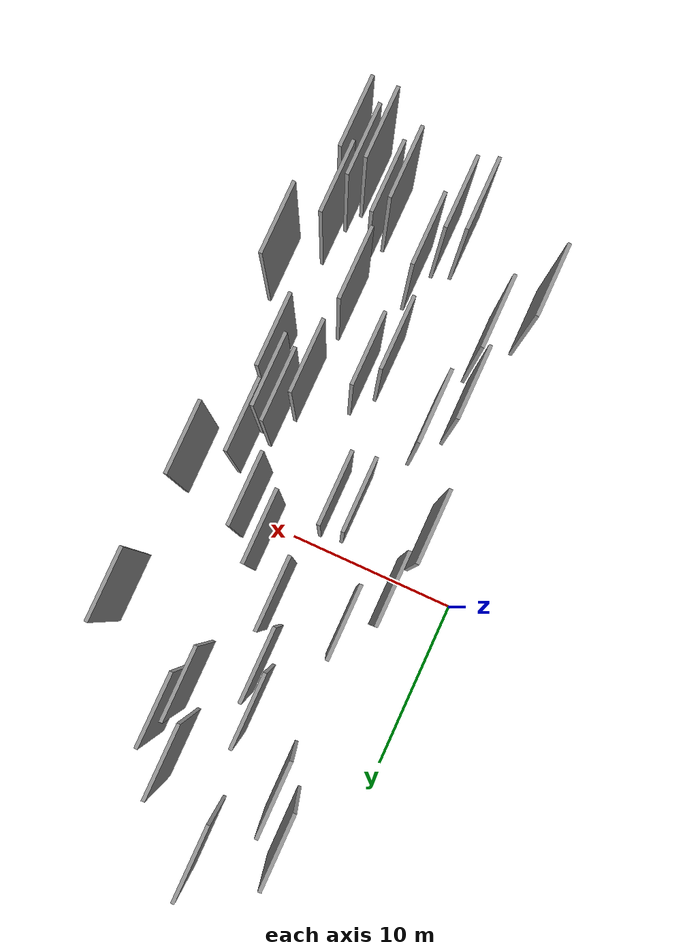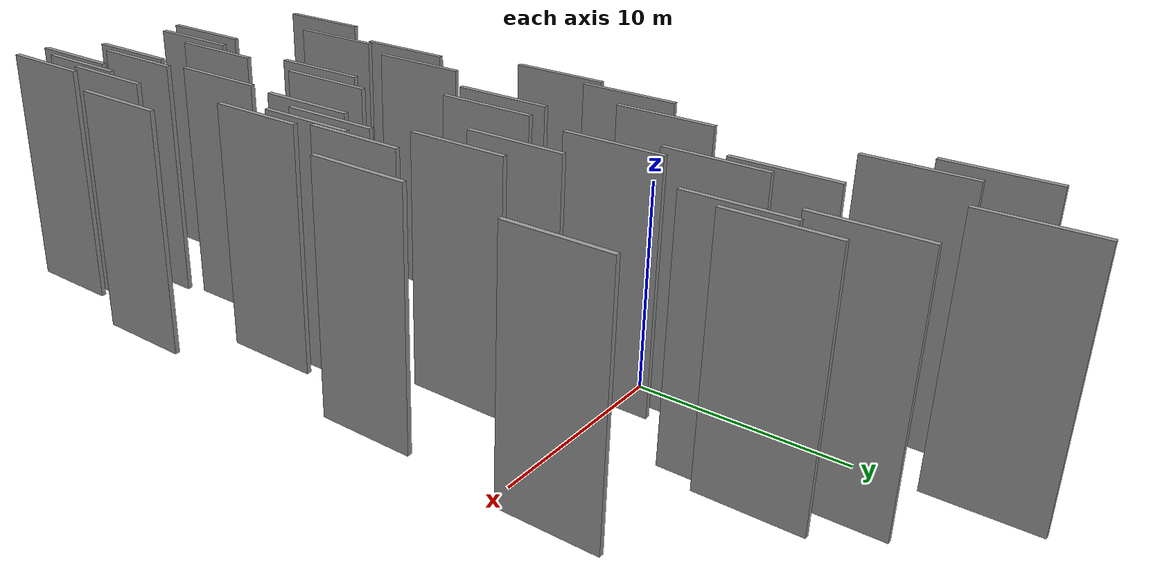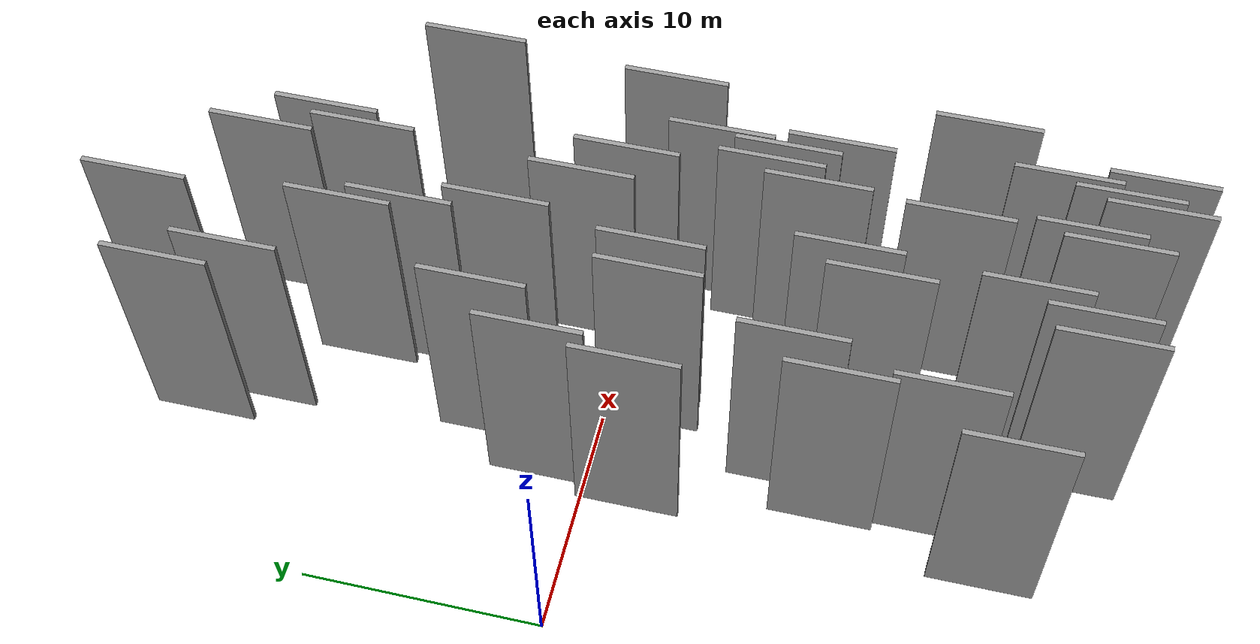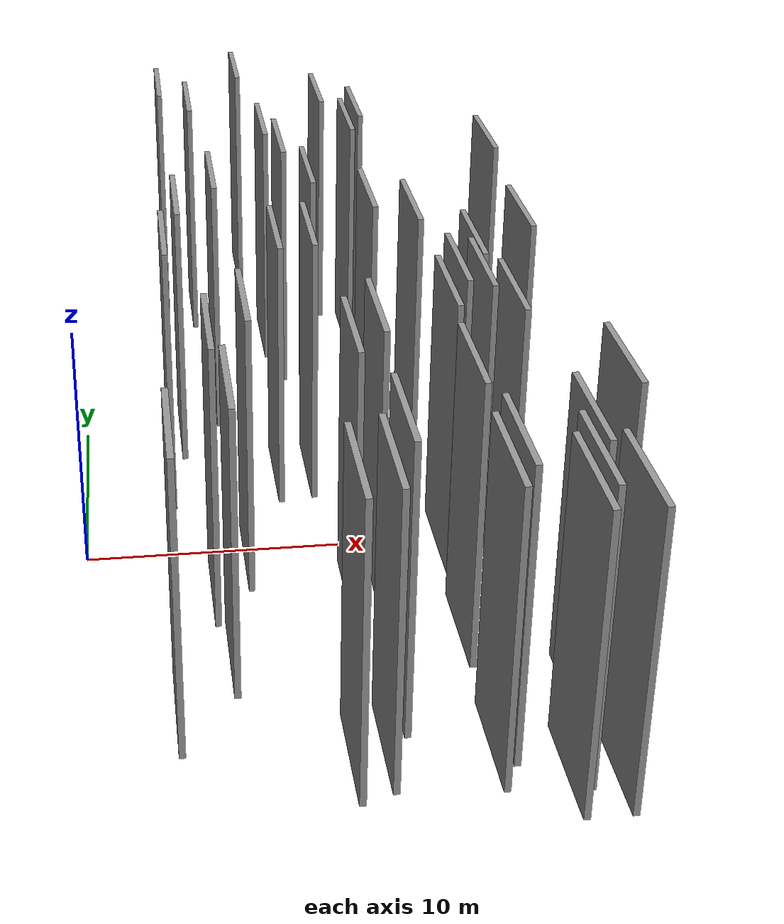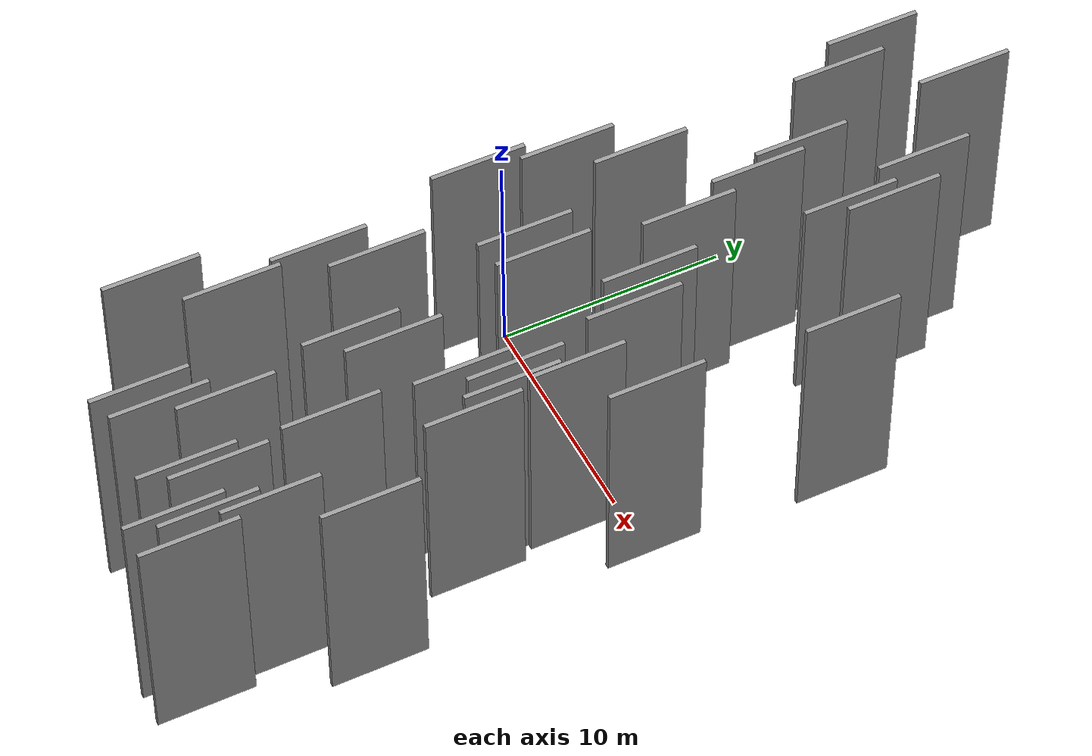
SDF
<sdf version="1.6">
 <world name="default">
  <scene>
   <sky><clouds><speed>12</speed></clouds></sky>
   <ambient>0.4 0.4 0.4 1</ambient>
   <background>0.7 0.7 0.7 1</background>
   <shadows>1</shadows>
  </scene>
  <gravity>0 0 -9.8066</gravity>
  <magnetic_field>6e-06 2.3e-05 -4.2e-05</magnetic_field>
  <physics default="0" name="default_physics" type="ode">
   <ode>
    <solver>
     <type>quick</type>
     <iters>10</iters>
     <sor>1.0</sor>
     <use_dynamic_moi_rescaling>0</use_dynamic_moi_rescaling>
    </solver>
    <constraints>
     <cfm>0</cfm>
     <erp>0.2</erp>
     <contact_max_correcting_vel>100</contact_max_correcting_vel>
     <contact_surface_layer>0.001</contact_surface_layer>
    </constraints>
   </ode>
   <max_step_size>0.004</max_step_size>
   <real_time_factor>1</real_time_factor>
   <real_time_update_rate>250</real_time_update_rate>
  </physics>
  <light name="sun" type="directional">
   <pose>0 0 10 0 0 0</pose>
   <diffuse>0.8 0.8 0.8 1</diffuse>
   <specular>0.2 0.2 0.2 1</specular>
   <attenuation>
    <range>1000</range>
    <constant>0.9</constant>
    <linear>0.01</linear>
    <quadratic>0.001</quadratic>
   </attenuation>
   <direction>-0.5 0.1 -0.9</direction>
  </light>
  <model name="grey_wall_1">
   <static>1</static>
   <pose>14.1114 -3.7937 5.0 0.000000 0.000000 1.570796</pose>
   <link name="link">
    <pose>0 0 5.00 0 0 0</pose>
    <collision name="collision"><geometry><box><size>4.00 0.2 10.00</size></box></geometry></collision>
    <visual name="visual">
     <cast_shadows>0</cast_shadows>
     <geometry><box><size>4.00 0.2 10.00</size></box></geometry>
     <material>
      <script>
       <uri>model://grey_wall/materials/scripts</uri>
       <uri>model://grey_wall/materials/textures</uri>
       <name>vrc/grey_wall</name>
      </script>
     </material>
    </visual>
   </link>
  </model>
  <model name="grey_wall_2">
   <static>1</static>
   <pose>4.8286 -13.6177 5.0 0.000000 0.000000 1.570796</pose>
   <link name="link">
    <pose>0 0 5.00 0 0 0</pose>
    <collision name="collision"><geometry><box><size>4.00 0.2 10.00</size></box></geometry></collision>
    <visual name="visual">
     <cast_shadows>0</cast_shadows>
     <geometry><box><size>4.00 0.2 10.00</size></box></geometry>
     <material>
      <script>
       <uri>model://grey_wall/materials/scripts</uri>
       <uri>model://grey_wall/materials/textures</uri>
       <name>vrc/grey_wall</name>
      </script>
     </material>
    </visual>
   </link>
  </model>
  <model name="grey_wall_3">
   <static>1</static>
   <pose>14.4330 -18.7778 5.0 0.000000 0.000000 1.570796</pose>
   <link name="link">
    <pose>0 0 5.00 0 0 0</pose>
    <collision name="collision"><geometry><box><size>4.00 0.2 10.00</size></box></geometry></collision>
    <visual name="visual">
     <cast_shadows>0</cast_shadows>
     <geometry><box><size>4.00 0.2 10.00</size></box></geometry>
     <material>
      <script>
       <uri>model://grey_wall/materials/scripts</uri>
       <uri>model://grey_wall/materials/textures</uri>
       <name>vrc/grey_wall</name>
      </script>
     </material>
    </visual>
   </link>
  </model>
  <model name="grey_wall_4">
   <static>1</static>
   <pose>10.6159 12.9399 5.0 0.000000 0.000000 1.570796</pose>
   <link name="link">
    <pose>0 0 5.00 0 0 0</pose>
    <collision name="collision"><geometry><box><size>4.00 0.2 10.00</size></box></geometry></collision>
    <visual name="visual">
     <cast_shadows>0</cast_shadows>
     <geometry><box><size>4.00 0.2 10.00</size></box></geometry>
     <material>
      <script>
       <uri>model://grey_wall/materials/scripts</uri>
       <uri>model://grey_wall/materials/textures</uri>
       <name>vrc/grey_wall</name>
      </script>
     </material>
    </visual>
   </link>
  </model>
  <model name="grey_wall_5">
   <static>1</static>
   <pose>16.2776 -1.5893 5.0 0.000000 0.000000 1.570796</pose>
   <link name="link">
    <pose>0 0 5.00 0 0 0</pose>
    <collision name="collision"><geometry><box><size>4.00 0.2 10.00</size></box></geometry></collision>
    <visual name="visual">
     <cast_shadows>0</cast_shadows>
     <geometry><box><size>4.00 0.2 10.00</size></box></geometry>
     <material>
      <script>
       <uri>model://grey_wall/materials/scripts</uri>
       <uri>model://grey_wall/materials/textures</uri>
       <name>vrc/grey_wall</name>
      </script>
     </material>
    </visual>
   </link>
  </model>
  <model name="grey_wall_6">
   <static>1</static>
   <pose>3.9730 0.8960 5.0 0.000000 0.000000 1.570796</pose>
   <link name="link">
    <pose>0 0 5.00 0 0 0</pose>
    <collision name="collision"><geometry><box><size>4.00 0.2 10.00</size></box></geometry></collision>
    <visual name="visual">
     <cast_shadows>0</cast_shadows>
     <geometry><box><size>4.00 0.2 10.00</size></box></geometry>
     <material>
      <script>
       <uri>model://grey_wall/materials/scripts</uri>
       <uri>model://grey_wall/materials/textures</uri>
       <name>vrc/grey_wall</name>
      </script>
     </material>
    </visual>
   </link>
  </model>
  <model name="grey_wall_7">
   <static>1</static>
   <pose>5.7420 -8.0515 5.0 0.000000 0.000000 1.570796</pose>
   <link name="link">
    <pose>0 0 5.00 0 0 0</pose>
    <collision name="collision"><geometry><box><size>4.00 0.2 10.00</size></box></geometry></collision>
    <visual name="visual">
     <cast_shadows>0</cast_shadows>
     <geometry><box><size>4.00 0.2 10.00</size></box></geometry>
     <material>
      <script>
       <uri>model://grey_wall/materials/scripts</uri>
       <uri>model://grey_wall/materials/textures</uri>
       <name>vrc/grey_wall</name>
      </script>
     </material>
    </visual>
   </link>
  </model>
  <model name="grey_wall_8">
   <static>1</static>
   <pose>16.6600 -13.3874 5.0 0.000000 0.000000 1.570796</pose>
   <link name="link">
    <pose>0 0 5.00 0 0 0</pose>
    <collision name="collision"><geometry><box><size>4.00 0.2 10.00</size></box></geometry></collision>
    <visual name="visual">
     <cast_shadows>0</cast_shadows>
     <geometry><box><size>4.00 0.2 10.00</size></box></geometry>
     <material>
      <script>
       <uri>model://grey_wall/materials/scripts</uri>
       <uri>model://grey_wall/materials/textures</uri>
       <name>vrc/grey_wall</name>
      </script>
     </material>
    </visual>
   </link>
  </model>
  <model name="grey_wall_9">
   <static>1</static>
   <pose>13.8829 -6.3449 5.0 0.000000 0.000000 1.570796</pose>
   <link name="link">
    <pose>0 0 5.00 0 0 0</pose>
    <collision name="collision"><geometry><box><size>4.00 0.2 10.00</size></box></geometry></collision>
    <visual name="visual">
     <cast_shadows>0</cast_shadows>
     <geometry><box><size>4.00 0.2 10.00</size></box></geometry>
     <material>
      <script>
       <uri>model://grey_wall/materials/scripts</uri>
       <uri>model://grey_wall/materials/textures</uri>
       <name>vrc/grey_wall</name>
      </script>
     </material>
    </visual>
   </link>
  </model>
  <model name="grey_wall_10">
   <static>1</static>
   <pose>9.6374 -15.9905 5.0 0.000000 0.000000 1.570796</pose>
   <link name="link">
    <pose>0 0 5.00 0 0 0</pose>
    <collision name="collision"><geometry><box><size>4.00 0.2 10.00</size></box></geometry></collision>
    <visual name="visual">
     <cast_shadows>0</cast_shadows>
     <geometry><box><size>4.00 0.2 10.00</size></box></geometry>
     <material>
      <script>
       <uri>model://grey_wall/materials/scripts</uri>
       <uri>model://grey_wall/materials/textures</uri>
       <name>vrc/grey_wall</name>
      </script>
     </material>
    </visual>
   </link>
  </model>
  <model name="grey_wall_11">
   <static>1</static>
   <pose>3.8425 14.4688 5.0 0.000000 0.000000 1.570796</pose>
   <link name="link">
    <pose>0 0 5.00 0 0 0</pose>
    <collision name="collision"><geometry><box><size>4.00 0.2 10.00</size></box></geometry></collision>
    <visual name="visual">
     <cast_shadows>0</cast_shadows>
     <geometry><box><size>4.00 0.2 10.00</size></box></geometry>
     <material>
      <script>
       <uri>model://grey_wall/materials/scripts</uri>
       <uri>model://grey_wall/materials/textures</uri>
       <name>vrc/grey_wall</name>
      </script>
     </material>
    </visual>
   </link>
  </model>
  <model name="grey_wall_12">
   <static>1</static>
   <pose>8.5138 -2.3980 5.0 0.000000 0.000000 1.570796</pose>
   <link name="link">
    <pose>0 0 5.00 0 0 0</pose>
    <collision name="collision"><geometry><box><size>4.00 0.2 10.00</size></box></geometry></collision>
    <visual name="visual">
     <cast_shadows>0</cast_shadows>
     <geometry><box><size>4.00 0.2 10.00</size></box></geometry>
     <material>
      <script>
       <uri>model://grey_wall/materials/scripts</uri>
       <uri>model://grey_wall/materials/textures</uri>
       <name>vrc/grey_wall</name>
      </script>
     </material>
    </visual>
   </link>
  </model>
  <model name="grey_wall_13">
   <static>1</static>
   <pose>7.9102 -18.7060 5.0 0.000000 0.000000 1.570796</pose>
   <link name="link">
    <pose>0 0 5.00 0 0 0</pose>
    <collision name="collision"><geometry><box><size>4.00 0.2 10.00</size></box></geometry></collision>
    <visual name="visual">
     <cast_shadows>0</cast_shadows>
     <geometry><box><size>4.00 0.2 10.00</size></box></geometry>
     <material>
      <script>
       <uri>model://grey_wall/materials/scripts</uri>
       <uri>model://grey_wall/materials/textures</uri>
       <name>vrc/grey_wall</name>
      </script>
     </material>
    </visual>
   </link>
  </model>
  <model name="grey_wall_14">
   <static>1</static>
   <pose>13.1579 -5.8604 5.0 0.000000 0.000000 1.570796</pose>
   <link name="link">
    <pose>0 0 5.00 0 0 0</pose>
    <collision name="collision"><geometry><box><size>4.00 0.2 10.00</size></box></geometry></collision>
    <visual name="visual">
     <cast_shadows>0</cast_shadows>
     <geometry><box><size>4.00 0.2 10.00</size></box></geometry>
     <material>
      <script>
       <uri>model://grey_wall/materials/scripts</uri>
       <uri>model://grey_wall/materials/textures</uri>
       <name>vrc/grey_wall</name>
      </script>
     </material>
    </visual>
   </link>
  </model>
  <model name="grey_wall_15">
   <static>1</static>
   <pose>11.9748 10.8636 5.0 0.000000 0.000000 1.570796</pose>
   <link name="link">
    <pose>0 0 5.00 0 0 0</pose>
    <collision name="collision"><geometry><box><size>4.00 0.2 10.00</size></box></geometry></collision>
    <visual name="visual">
     <cast_shadows>0</cast_shadows>
     <geometry><box><size>4.00 0.2 10.00</size></box></geometry>
     <material>
      <script>
       <uri>model://grey_wall/materials/scripts</uri>
       <uri>model://grey_wall/materials/textures</uri>
       <name>vrc/grey_wall</name>
      </script>
     </material>
    </visual>
   </link>
  </model>
  <model name="grey_wall_16">
   <static>1</static>
   <pose>12.4791 -0.5651 5.0 0.000000 0.000000 1.570796</pose>
   <link name="link">
    <pose>0 0 5.00 0 0 0</pose>
    <collision name="collision"><geometry><box><size>4.00 0.2 10.00</size></box></geometry></collision>
    <visual name="visual">
     <cast_shadows>0</cast_shadows>
     <geometry><box><size>4.00 0.2 10.00</size></box></geometry>
     <material>
      <script>
       <uri>model://grey_wall/materials/scripts</uri>
       <uri>model://grey_wall/materials/textures</uri>
       <name>vrc/grey_wall</name>
      </script>
     </material>
    </visual>
   </link>
  </model>
  <model name="grey_wall_17">
   <static>1</static>
   <pose>3.3967 -2.6597 5.0 0.000000 0.000000 1.570796</pose>
   <link name="link">
    <pose>0 0 5.00 0 0 0</pose>
    <collision name="collision"><geometry><box><size>4.00 0.2 10.00</size></box></geometry></collision>
    <visual name="visual">
     <cast_shadows>0</cast_shadows>
     <geometry><box><size>4.00 0.2 10.00</size></box></geometry>
     <material>
      <script>
       <uri>model://grey_wall/materials/scripts</uri>
       <uri>model://grey_wall/materials/textures</uri>
       <name>vrc/grey_wall</name>
      </script>
     </material>
    </visual>
   </link>
  </model>
  <model name="grey_wall_18">
   <static>1</static>
   <pose>5.0087 12.3215 5.0 0.000000 0.000000 1.570796</pose>
   <link name="link">
    <pose>0 0 5.00 0 0 0</pose>
    <collision name="collision"><geometry><box><size>4.00 0.2 10.00</size></box></geometry></collision>
    <visual name="visual">
     <cast_shadows>0</cast_shadows>
     <geometry><box><size>4.00 0.2 10.00</size></box></geometry>
     <material>
      <script>
       <uri>model://grey_wall/materials/scripts</uri>
       <uri>model://grey_wall/materials/textures</uri>
       <name>vrc/grey_wall</name>
      </script>
     </material>
    </visual>
   </link>
  </model>
  <model name="grey_wall_19">
   <static>1</static>
   <pose>3.0246 -16.1511 5.0 0.000000 0.000000 1.570796</pose>
   <link name="link">
    <pose>0 0 5.00 0 0 0</pose>
    <collision name="collision"><geometry><box><size>4.00 0.2 10.00</size></box></geometry></collision>
    <visual name="visual">
     <cast_shadows>0</cast_shadows>
     <geometry><box><size>4.00 0.2 10.00</size></box></geometry>
     <material>
      <script>
       <uri>model://grey_wall/materials/scripts</uri>
       <uri>model://grey_wall/materials/textures</uri>
       <name>vrc/grey_wall</name>
      </script>
     </material>
    </visual>
   </link>
  </model>
  <model name="grey_wall_20">
   <static>1</static>
   <pose>8.9035 -10.5954 5.0 0.000000 0.000000 1.570796</pose>
   <link name="link">
    <pose>0 0 5.00 0 0 0</pose>
    <collision name="collision"><geometry><box><size>4.00 0.2 10.00</size></box></geometry></collision>
    <visual name="visual">
     <cast_shadows>0</cast_shadows>
     <geometry><box><size>4.00 0.2 10.00</size></box></geometry>
     <material>
      <script>
       <uri>model://grey_wall/materials/scripts</uri>
       <uri>model://grey_wall/materials/textures</uri>
       <name>vrc/grey_wall</name>
      </script>
     </material>
    </visual>
   </link>
  </model>
  <model name="grey_wall_21">
   <static>1</static>
   <pose>9.8785 -9.2996 5.0 0.000000 0.000000 1.570796</pose>
   <link name="link">
    <pose>0 0 5.00 0 0 0</pose>
    <collision name="collision"><geometry><box><size>4.00 0.2 10.00</size></box></geometry></collision>
    <visual name="visual">
     <cast_shadows>0</cast_shadows>
     <geometry><box><size>4.00 0.2 10.00</size></box></geometry>
     <material>
      <script>
       <uri>model://grey_wall/materials/scripts</uri>
       <uri>model://grey_wall/materials/textures</uri>
       <name>vrc/grey_wall</name>
      </script>
     </material>
    </visual>
   </link>
  </model>
  <model name="grey_wall_22">
   <static>1</static>
   <pose>11.0679 0.8018 5.0 0.000000 0.000000 1.570796</pose>
   <link name="link">
    <pose>0 0 5.00 0 0 0</pose>
    <collision name="collision"><geometry><box><size>4.00 0.2 10.00</size></box></geometry></collision>
    <visual name="visual">
     <cast_shadows>0</cast_shadows>
     <geometry><box><size>4.00 0.2 10.00</size></box></geometry>
     <material>
      <script>
       <uri>model://grey_wall/materials/scripts</uri>
       <uri>model://grey_wall/materials/textures</uri>
       <name>vrc/grey_wall</name>
      </script>
     </material>
    </visual>
   </link>
  </model>
  <model name="grey_wall_23">
   <static>1</static>
   <pose>16.7042 6.4296 5.0 0.000000 0.000000 1.570796</pose>
   <link name="link">
    <pose>0 0 5.00 0 0 0</pose>
    <collision name="collision"><geometry><box><size>4.00 0.2 10.00</size></box></geometry></collision>
    <visual name="visual">
     <cast_shadows>0</cast_shadows>
     <geometry><box><size>4.00 0.2 10.00</size></box></geometry>
     <material>
      <script>
       <uri>model://grey_wall/materials/scripts</uri>
       <uri>model://grey_wall/materials/textures</uri>
       <name>vrc/grey_wall</name>
      </script>
     </material>
    </visual>
   </link>
  </model>
  <model name="grey_wall_24">
   <static>1</static>
   <pose>14.8474 -16.5143 5.0 0.000000 0.000000 1.570796</pose>
   <link name="link">
    <pose>0 0 5.00 0 0 0</pose>
    <collision name="collision"><geometry><box><size>4.00 0.2 10.00</size></box></geometry></collision>
    <visual name="visual">
     <cast_shadows>0</cast_shadows>
     <geometry><box><size>4.00 0.2 10.00</size></box></geometry>
     <material>
      <script>
       <uri>model://grey_wall/materials/scripts</uri>
       <uri>model://grey_wall/materials/textures</uri>
       <name>vrc/grey_wall</name>
      </script>
     </material>
    </visual>
   </link>
  </model>
  <model name="grey_wall_25">
   <static>1</static>
   <pose>8.9203 -18.3437 5.0 0.000000 0.000000 1.570796</pose>
   <link name="link">
    <pose>0 0 5.00 0 0 0</pose>
    <collision name="collision"><geometry><box><size>4.00 0.2 10.00</size></box></geometry></collision>
    <visual name="visual">
     <cast_shadows>0</cast_shadows>
     <geometry><box><size>4.00 0.2 10.00</size></box></geometry>
     <material>
      <script>
       <uri>model://grey_wall/materials/scripts</uri>
       <uri>model://grey_wall/materials/textures</uri>
       <name>vrc/grey_wall</name>
      </script>
     </material>
    </visual>
   </link>
  </model>
  <model name="grey_wall_26">
   <static>1</static>
   <pose>11.4298 9.2579 5.0 0.000000 0.000000 1.570796</pose>
   <link name="link">
    <pose>0 0 5.00 0 0 0</pose>
    <collision name="collision"><geometry><box><size>4.00 0.2 10.00</size></box></geometry></collision>
    <visual name="visual">
     <cast_shadows>0</cast_shadows>
     <geometry><box><size>4.00 0.2 10.00</size></box></geometry>
     <material>
      <script>
       <uri>model://grey_wall/materials/scripts</uri>
       <uri>model://grey_wall/materials/textures</uri>
       <name>vrc/grey_wall</name>
      </script>
     </material>
    </visual>
   </link>
  </model>
  <model name="grey_wall_27">
   <static>1</static>
   <pose>12.5568 -17.5587 5.0 0.000000 0.000000 1.570796</pose>
   <link name="link">
    <pose>0 0 5.00 0 0 0</pose>
    <collision name="collision"><geometry><box><size>4.00 0.2 10.00</size></box></geometry></collision>
    <visual name="visual">
     <cast_shadows>0</cast_shadows>
     <geometry><box><size>4.00 0.2 10.00</size></box></geometry>
     <material>
      <script>
       <uri>model://grey_wall/materials/scripts</uri>
       <uri>model://grey_wall/materials/textures</uri>
       <name>vrc/grey_wall</name>
      </script>
     </material>
    </visual>
   </link>
  </model>
  <model name="grey_wall_28">
   <static>1</static>
   <pose>12.4710 -7.7170 5.0 0.000000 0.000000 1.570796</pose>
   <link name="link">
    <pose>0 0 5.00 0 0 0</pose>
    <collision name="collision"><geometry><box><size>4.00 0.2 10.00</size></box></geometry></collision>
    <visual name="visual">
     <cast_shadows>0</cast_shadows>
     <geometry><box><size>4.00 0.2 10.00</size></box></geometry>
     <material>
      <script>
       <uri>model://grey_wall/materials/scripts</uri>
       <uri>model://grey_wall/materials/textures</uri>
       <name>vrc/grey_wall</name>
      </script>
     </material>
    </visual>
   </link>
  </model>
  <model name="grey_wall_29">
   <static>1</static>
   <pose>7.8761 9.0600 5.0 0.000000 0.000000 1.570796</pose>
   <link name="link">
    <pose>0 0 5.00 0 0 0</pose>
    <collision name="collision"><geometry><box><size>4.00 0.2 10.00</size></box></geometry></collision>
    <visual name="visual">
     <cast_shadows>0</cast_shadows>
     <geometry><box><size>4.00 0.2 10.00</size></box></geometry>
     <material>
      <script>
       <uri>model://grey_wall/materials/scripts</uri>
       <uri>model://grey_wall/materials/textures</uri>
       <name>vrc/grey_wall</name>
      </script>
     </material>
    </visual>
   </link>
  </model>
  <model name="grey_wall_30">
   <static>1</static>
   <pose>4.4993 -9.9000 5.0 0.000000 0.000000 1.570796</pose>
   <link name="link">
    <pose>0 0 5.00 0 0 0</pose>
    <collision name="collision"><geometry><box><size>4.00 0.2 10.00</size></box></geometry></collision>
    <visual name="visual">
     <cast_shadows>0</cast_shadows>
     <geometry><box><size>4.00 0.2 10.00</size></box></geometry>
     <material>
      <script>
       <uri>model://grey_wall/materials/scripts</uri>
       <uri>model://grey_wall/materials/textures</uri>
       <name>vrc/grey_wall</name>
      </script>
     </material>
    </visual>
   </link>
  </model>
  <model name="grey_wall_31">
   <static>1</static>
   <pose>9.1450 3.4872 5.0 0.000000 0.000000 1.570796</pose>
   <link name="link">
    <pose>0 0 5.00 0 0 0</pose>
    <collision name="collision"><geometry><box><size>4.00 0.2 10.00</size></box></geometry></collision>
    <visual name="visual">
     <cast_shadows>0</cast_shadows>
     <geometry><box><size>4.00 0.2 10.00</size></box></geometry>
     <material>
      <script>
       <uri>model://grey_wall/materials/scripts</uri>
       <uri>model://grey_wall/materials/textures</uri>
       <name>vrc/grey_wall</name>
      </script>
     </material>
    </visual>
   </link>
  </model>
  <model name="grey_wall_32">
   <static>1</static>
   <pose>7.2981 -2.5812 5.0 0.000000 0.000000 1.570796</pose>
   <link name="link">
    <pose>0 0 5.00 0 0 0</pose>
    <collision name="collision"><geometry><box><size>4.00 0.2 10.00</size></box></geometry></collision>
    <visual name="visual">
     <cast_shadows>0</cast_shadows>
     <geometry><box><size>4.00 0.2 10.00</size></box></geometry>
     <material>
      <script>
       <uri>model://grey_wall/materials/scripts</uri>
       <uri>model://grey_wall/materials/textures</uri>
       <name>vrc/grey_wall</name>
      </script>
     </material>
    </visual>
   </link>
  </model>
  <model name="grey_wall_33">
   <static>1</static>
   <pose>7.3447 16.6387 5.0 0.000000 0.000000 1.570796</pose>
   <link name="link">
    <pose>0 0 5.00 0 0 0</pose>
    <collision name="collision"><geometry><box><size>4.00 0.2 10.00</size></box></geometry></collision>
    <visual name="visual">
     <cast_shadows>0</cast_shadows>
     <geometry><box><size>4.00 0.2 10.00</size></box></geometry>
     <material>
      <script>
       <uri>model://grey_wall/materials/scripts</uri>
       <uri>model://grey_wall/materials/textures</uri>
       <name>vrc/grey_wall</name>
      </script>
     </material>
    </visual>
   </link>
  </model>
  <model name="grey_wall_34">
   <static>1</static>
   <pose>12.2179 -12.9237 5.0 0.000000 0.000000 1.570796</pose>
   <link name="link">
    <pose>0 0 5.00 0 0 0</pose>
    <collision name="collision"><geometry><box><size>4.00 0.2 10.00</size></box></geometry></collision>
    <visual name="visual">
     <cast_shadows>0</cast_shadows>
     <geometry><box><size>4.00 0.2 10.00</size></box></geometry>
     <material>
      <script>
       <uri>model://grey_wall/materials/scripts</uri>
       <uri>model://grey_wall/materials/textures</uri>
       <name>vrc/grey_wall</name>
      </script>
     </material>
    </visual>
   </link>
  </model>
  <model name="grey_wall_35">
   <static>1</static>
   <pose>12.0315 -18.5883 5.0 0.000000 0.000000 1.570796</pose>
   <link name="link">
    <pose>0 0 5.00 0 0 0</pose>
    <collision name="collision"><geometry><box><size>4.00 0.2 10.00</size></box></geometry></collision>
    <visual name="visual">
     <cast_shadows>0</cast_shadows>
     <geometry><box><size>4.00 0.2 10.00</size></box></geometry>
     <material>
      <script>
       <uri>model://grey_wall/materials/scripts</uri>
       <uri>model://grey_wall/materials/textures</uri>
       <name>vrc/grey_wall</name>
      </script>
     </material>
    </visual>
   </link>
  </model>
  <model name="grey_wall_36">
   <static>1</static>
   <pose>13.9565 -19.9278 5.0 0.000000 0.000000 1.570796</pose>
   <link name="link">
    <pose>0 0 5.00 0 0 0</pose>
    <collision name="collision"><geometry><box><size>4.00 0.2 10.00</size></box></geometry></collision>
    <visual name="visual">
     <cast_shadows>0</cast_shadows>
     <geometry><box><size>4.00 0.2 10.00</size></box></geometry>
     <material>
      <script>
       <uri>model://grey_wall/materials/scripts</uri>
       <uri>model://grey_wall/materials/textures</uri>
       <name>vrc/grey_wall</name>
      </script>
     </material>
    </visual>
   </link>
  </model>
  <model name="grey_wall_37">
   <static>1</static>
   <pose>8.3832 6.8987 5.0 0.000000 0.000000 1.570796</pose>
   <link name="link">
    <pose>0 0 5.00 0 0 0</pose>
    <collision name="collision"><geometry><box><size>4.00 0.2 10.00</size></box></geometry></collision>
    <visual name="visual">
     <cast_shadows>0</cast_shadows>
     <geometry><box><size>4.00 0.2 10.00</size></box></geometry>
     <material>
      <script>
       <uri>model://grey_wall/materials/scripts</uri>
       <uri>model://grey_wall/materials/textures</uri>
       <name>vrc/grey_wall</name>
      </script>
     </material>
    </visual>
   </link>
  </model>
  <model name="grey_wall_38">
   <static>1</static>
   <pose>5.4413 3.3285 5.0 0.000000 0.000000 1.570796</pose>
   <link name="link">
    <pose>0 0 5.00 0 0 0</pose>
    <collision name="collision"><geometry><box><size>4.00 0.2 10.00</size></box></geometry></collision>
    <visual name="visual">
     <cast_shadows>0</cast_shadows>
     <geometry><box><size>4.00 0.2 10.00</size></box></geometry>
     <material>
      <script>
       <uri>model://grey_wall/materials/scripts</uri>
       <uri>model://grey_wall/materials/textures</uri>
       <name>vrc/grey_wall</name>
      </script>
     </material>
    </visual>
   </link>
  </model>
  <model name="grey_wall_39">
   <static>1</static>
   <pose>15.3505 -19.9263 5.0 0.000000 0.000000 1.570796</pose>
   <link name="link">
    <pose>0 0 5.00 0 0 0</pose>
    <collision name="collision"><geometry><box><size>4.00 0.2 10.00</size></box></geometry></collision>
    <visual name="visual">
     <cast_shadows>0</cast_shadows>
     <geometry><box><size>4.00 0.2 10.00</size></box></geometry>
     <material>
      <script>
       <uri>model://grey_wall/materials/scripts</uri>
       <uri>model://grey_wall/materials/textures</uri>
       <name>vrc/grey_wall</name>
      </script>
     </material>
    </visual>
   </link>
  </model>
  <model name="grey_wall_40">
   <static>1</static>
   <pose>14.4997 -8.2356 5.0 0.000000 0.000000 1.570796</pose>
   <link name="link">
    <pose>0 0 5.00 0 0 0</pose>
    <collision name="collision"><geometry><box><size>4.00 0.2 10.00</size></box></geometry></collision>
    <visual name="visual">
     <cast_shadows>0</cast_shadows>
     <geometry><box><size>4.00 0.2 10.00</size></box></geometry>
     <material>
      <script>
       <uri>model://grey_wall/materials/scripts</uri>
       <uri>model://grey_wall/materials/textures</uri>
       <name>vrc/grey_wall</name>
      </script>
     </material>
    </visual>
   </link>
  </model>
 </world>
</sdf>
